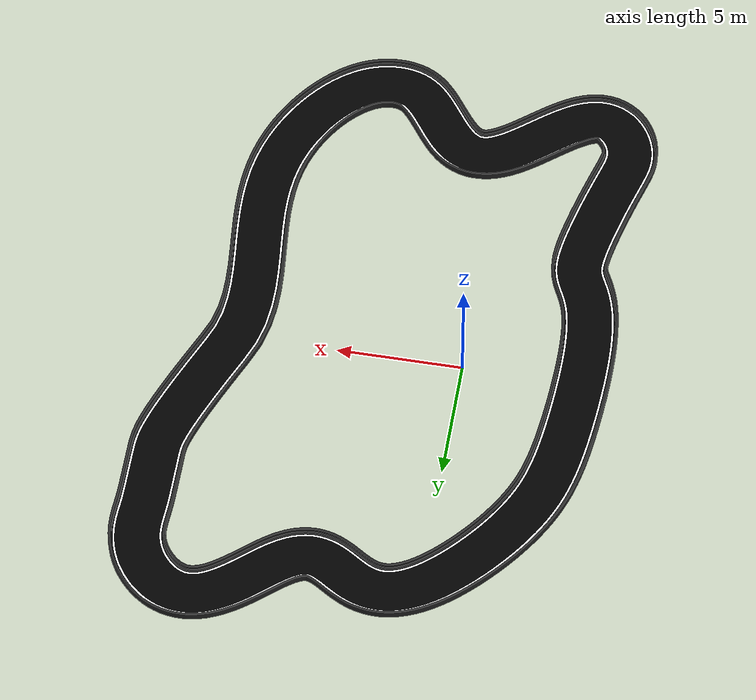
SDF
<sdf version='1.10'>
  <world name='empty'>
    <physics name='4ms' type='ode'>
      <max_step_size>0.0040000000000000001</max_step_size>
      <real_time_factor>1</real_time_factor>
      <real_time_update_rate>250</real_time_update_rate>
    </physics>
    <plugin name='gz::sim::systems::Physics' filename='gz-sim-physics-system'/>
    <plugin name='gz::sim::systems::UserCommands' filename='gz-sim-user-commands-system'/>
    <plugin name='gz::sim::systems::SceneBroadcaster' filename='gz-sim-scene-broadcaster-system'/>
    <plugin name='gz::sim::systems::Contact' filename='gz-sim-contact-system'/>
    <plugin name='gz::sim::systems::Sensors' filename='gz-sim-sensors-system'>
      <render_engine>ogre2</render_engine>
    </plugin>
    <plugin name='gz::sim::systems::Imu' filename='gz-sim-imu-system'/>
    <gravity>0 0 -9.8000000000000007</gravity>
    <magnetic_field>5.5644999999999998e-06 2.2875799999999999e-05 -4.2388400000000002e-05</magnetic_field>
    <atmosphere type='adiabatic'/>
    <scene>
      <ambient>0.400000006 0.400000006 0.400000006 1</ambient>
      <background>0.699999988 0.699999988 0.699999988 1</background>
      <shadows>true</shadows>
    </scene>
    <model name='ground_plane'>
      <static>true</static>
      <link name='link'>
        <collision name='collision'>
          <geometry>
            <plane>
              <normal>0 0 1</normal>
              <size>100 100</size>
            </plane>
          </geometry>
          <surface>
            <friction>
              <ode>
                <mu>50</mu>
              </ode>
            </friction>
            <bounce/>
            <contact/>
          </surface>
        </collision>

        <pose>0 0 0 0 0 0</pose>
        <inertial>
          <pose>0 0 0 0 0 0</pose>
          <mass>1</mass>
          <inertia>
            <ixx>1</ixx>
            <ixy>0</ixy>
            <ixz>0</ixz>
            <iyy>1</iyy>
            <iyz>0</iyz>
            <izz>1</izz>
          </inertia>
        </inertial>
        <enable_wind>false</enable_wind>
      </link>
      <pose>0 0 0 0 0 0</pose>
      <self_collide>false</self_collide>
    </model>
    <include>
      <uri>model://racetrack</uri>
      <name>track</name>
      <pose>11.123247070181106 6.7781278363181094 0.05 4.695157138474266e-05 0.00029643042922795307 -9.0847347102408018e-09</pose>
      <static>true</static>
    </include>
    <light name='sun' type='directional'>
      <pose>0 0 10 0 0 0</pose>
      <cast_shadows>true</cast_shadows>
      <intensity>1</intensity>
      <direction>-0.5 0.10000000000000001 -0.90000000000000002</direction>
      <diffuse>0.800000012 0.800000012 0.800000012 1</diffuse>
      <specular>0.200000003 0.200000003 0.200000003 1</specular>
      <attenuation>
        <range>1000</range>
        <linear>0.0099999997764825821</linear>
        <constant>0.89999997615814209</constant>
        <quadratic>0.0010000000474974513</quadratic>
      </attenuation>
      <spot>
        <inner_angle>0</inner_angle>
        <outer_angle>0</outer_angle>
        <falloff>0</falloff>
      </spot>
    </light>
  </world>
</sdf>

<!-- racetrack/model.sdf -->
<sdf version="1.6">
  <model name="track">
    <link name="link">
      <collision name="collision">
        <geometry>
			<mesh>
			  <scale>1 1 1</scale>
			  <uri>moldel://racetrack/meshes/track.stl</uri>
			</mesh>
		</geometry>
		<surface>
				<friction>
					<ode>
					  <mu>1</mu>
					  <mu2>1</mu2>
					</ode>
				</friction>
			</surface>
      </collision>
      <visual name="visual">
        <geometry>
          <mesh>
		    <scale>1 1 1</scale>
            <uri>moldel://racetrack/meshes/track.dae</uri>
          </mesh>
        </geometry>
      </visual>
    </link>
  </model>
</sdf>
